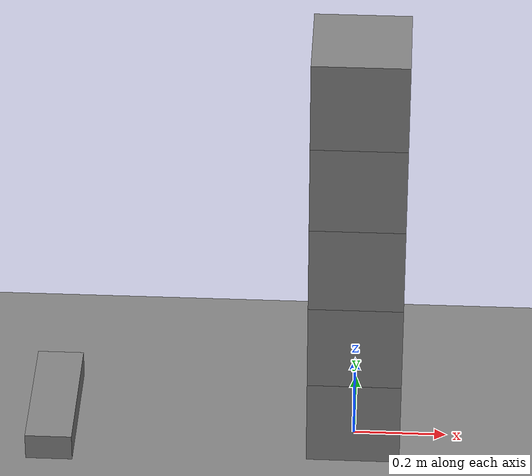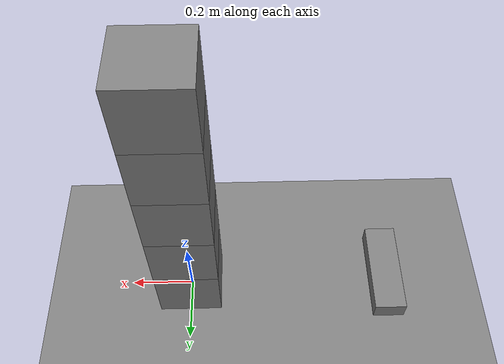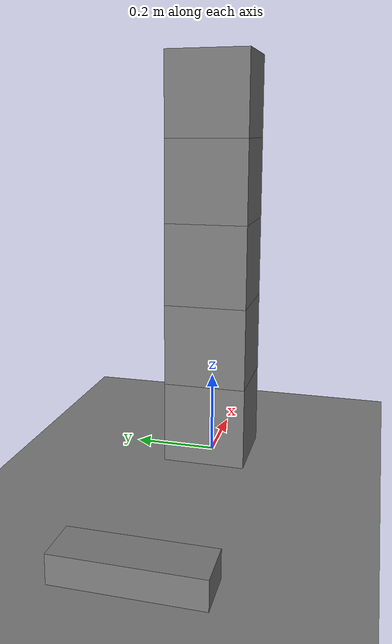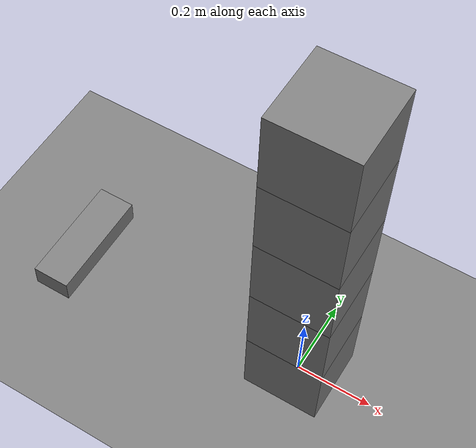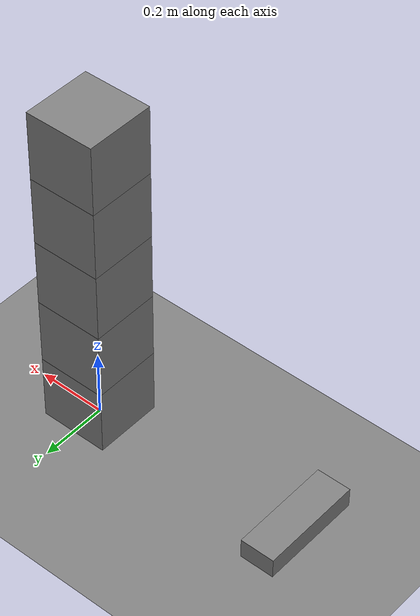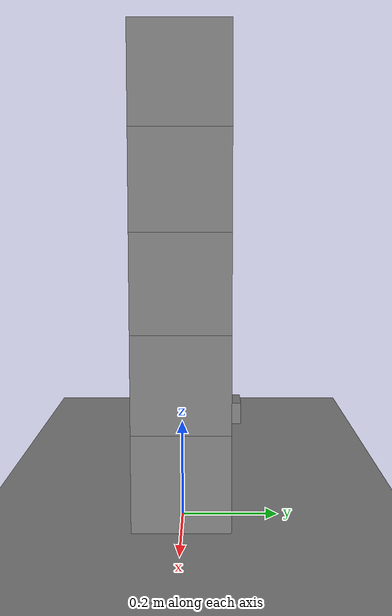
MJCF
<mujoco model="stack_fixture">
  <option timestep="0.002"/>
  <worldbody>
    <geom name="floor" type="plane" size="6 6 0.1" friction="0.6 0.005 0.0001"/>
    <body name="block1" pos="0 0 0.100">
      <freejoint/>
      <geom name="block1" type="box" size="0.1 0.1 0.1" mass="0.5" friction="0.1 0.005 0.0001"/>
    </body>
    <body name="block2" pos="0 0 0.300">
      <freejoint/>
      <geom name="block2" type="box" size="0.1 0.1 0.1" mass="0.5" friction="0.1 0.005 0.0001"/>
    </body>
    <body name="block3" pos="0 0 0.500">
      <freejoint/>
      <geom name="block3" type="box" size="0.1 0.1 0.1" mass="0.5" friction="0.1 0.005 0.0001"/>
    </body>
    <body name="block4" pos="0 0 0.700">
      <freejoint/>
      <geom name="block4" type="box" size="0.1 0.1 0.1" mass="0.5" friction="0.1 0.005 0.0001"/>
    </body>
    <body name="block5" pos="0 0 0.900">
      <freejoint/>
      <geom name="block5" type="box" size="0.1 0.1 0.1" mass="0.5" friction="0.1 0.005 0.0001"/>
    </body>
    <body name="pusher" pos="-0.65 0 0.05">
      <joint name="push" type="slide" axis="1 0 0" limited="true" range="0 0.63"/>
      <geom name="pusher" type="box" size="0.05 0.15 0.03" mass="1.0" friction="0.1 0.005 0.0001"/>
    </body>
  </worldbody>
  <actuator>
    <velocity name="push_motor" joint="push" kv="500" ctrllimited="true" ctrlrange="-3 3" forcelimited="true" forcerange="-300 300"/>
  </actuator>
  <keyframe>
    <key name="start" qpos="0 0 0.100 1 0 0 0  0 0 0.300 1 0 0 0  0 0 0.500 1 0 0 0  0 0 0.700 1 0 0 0  0 0 0.900 1 0 0 0  0" qvel="0 0 0 0 0 0  0 0 0 0 0 0  0 0 0 0 0 0  0 0 0 0 0 0  0 0 0 0 0 0  0" ctrl="1.5"/>
  </keyframe>
</mujoco>
